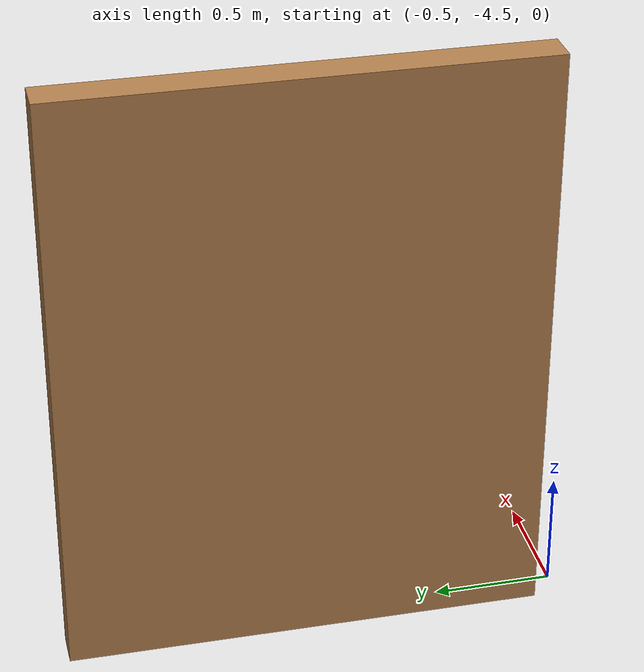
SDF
<?xml version='1.0'?>
<sdf version='1.6'>
  <model name='wood'>
    <pose frame=''>-0.54 -3.405 0 0 -0 0</pose>
    <link name='Wall_0'>
      <collision name='Wall_0_Collision'>
        <geometry>
          <box>
            <size>2 0.15 2.5</size>
          </box>
        </geometry>
        <pose frame=''>0 0 1.25 0 -0 0</pose>
      </collision>
      <visual name='Wall_0_Visual'>
        <pose frame=''>0 0 1.25 0 -0 0</pose>
        <geometry>
          <box>
            <size>2 0.15 2.5</size>
          </box>
        </geometry>
        <material>
          <script>
            <uri>file://media/materials/scripts/gazebo.material</uri>
            <name>Gazebo/Wood</name>
          </script>
          <ambient>1 1 1 1</ambient>
        </material>
      </visual>
      <pose frame=''>0 0 0 0 0 -1.5708</pose>
    </link>
    <static>1</static>
  </model>
</sdf>
